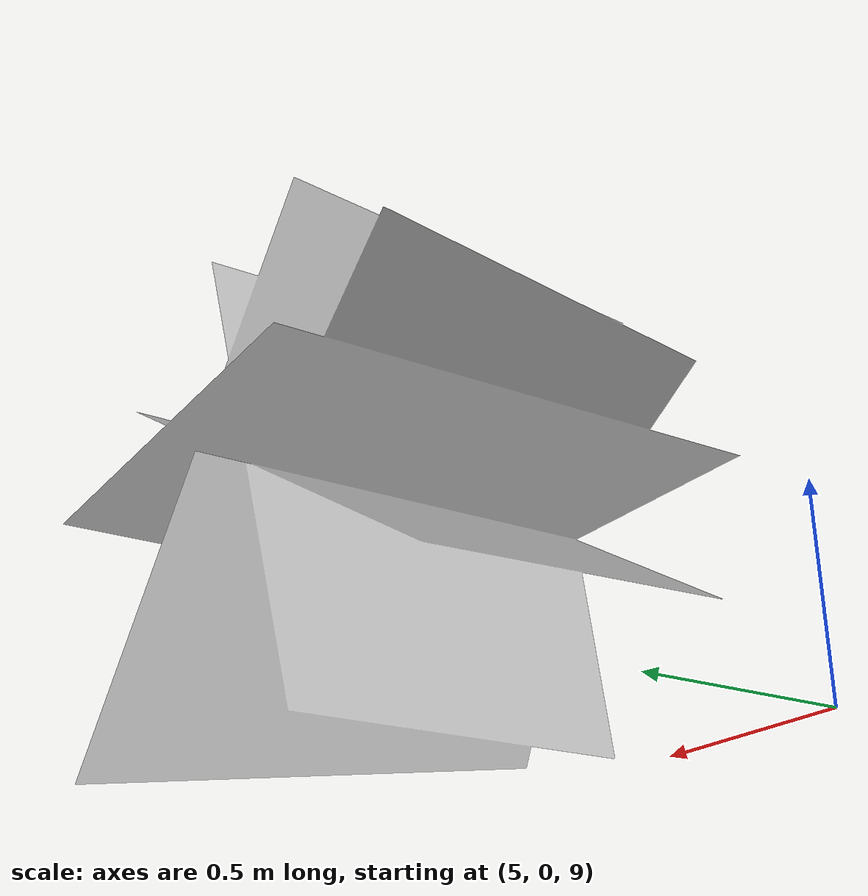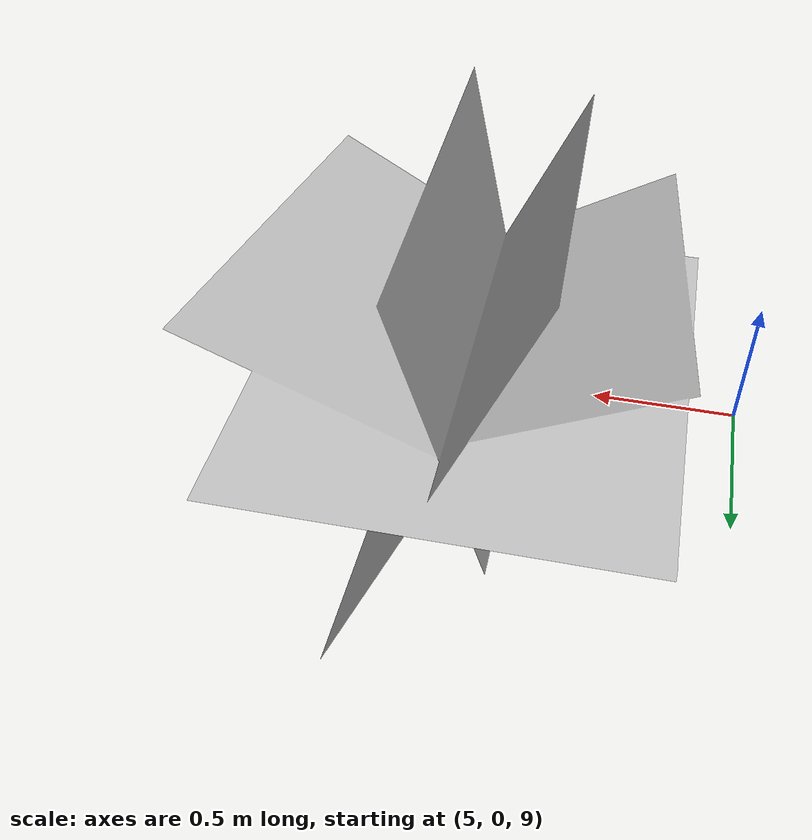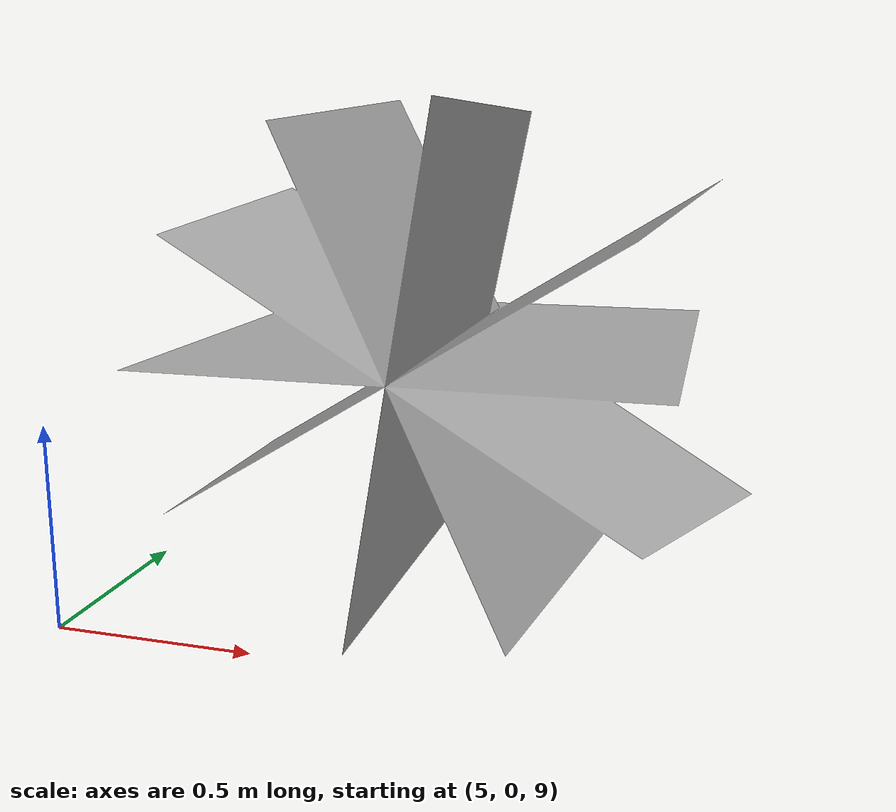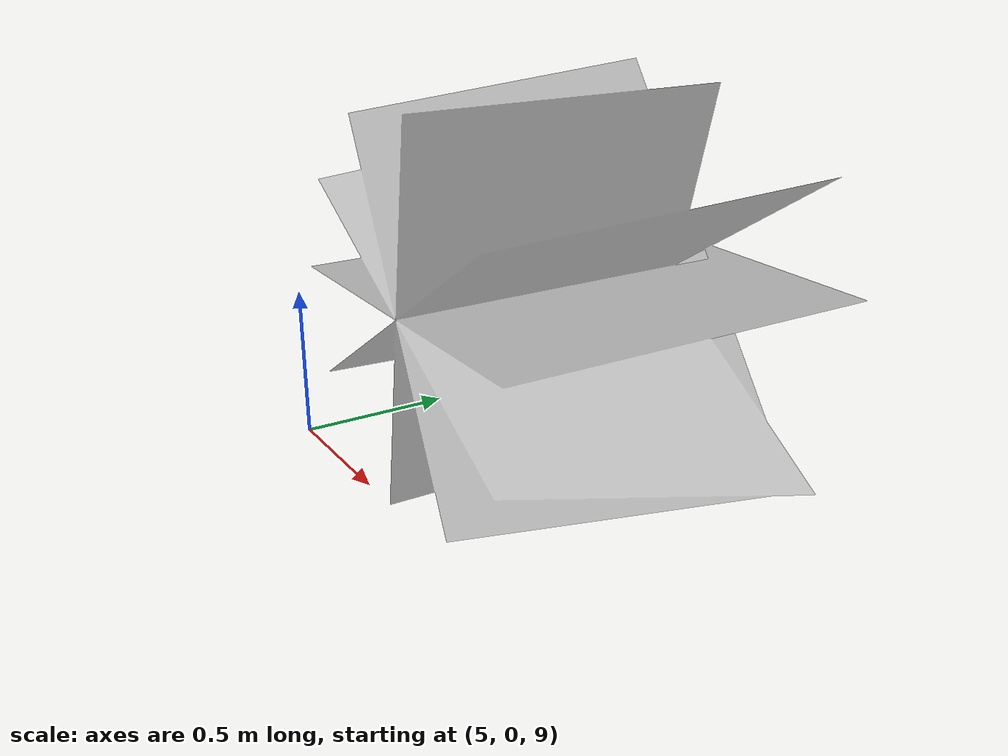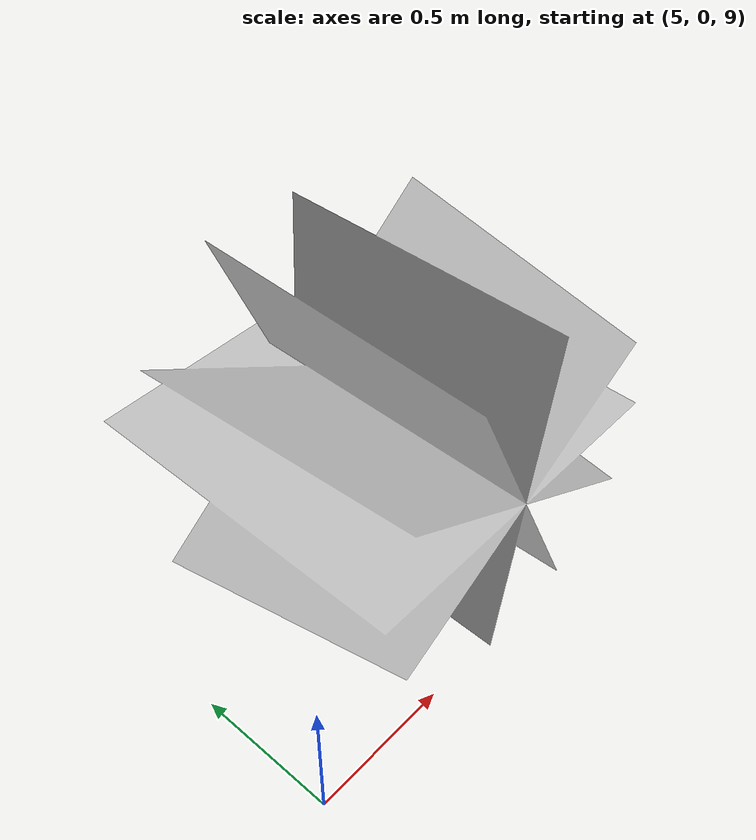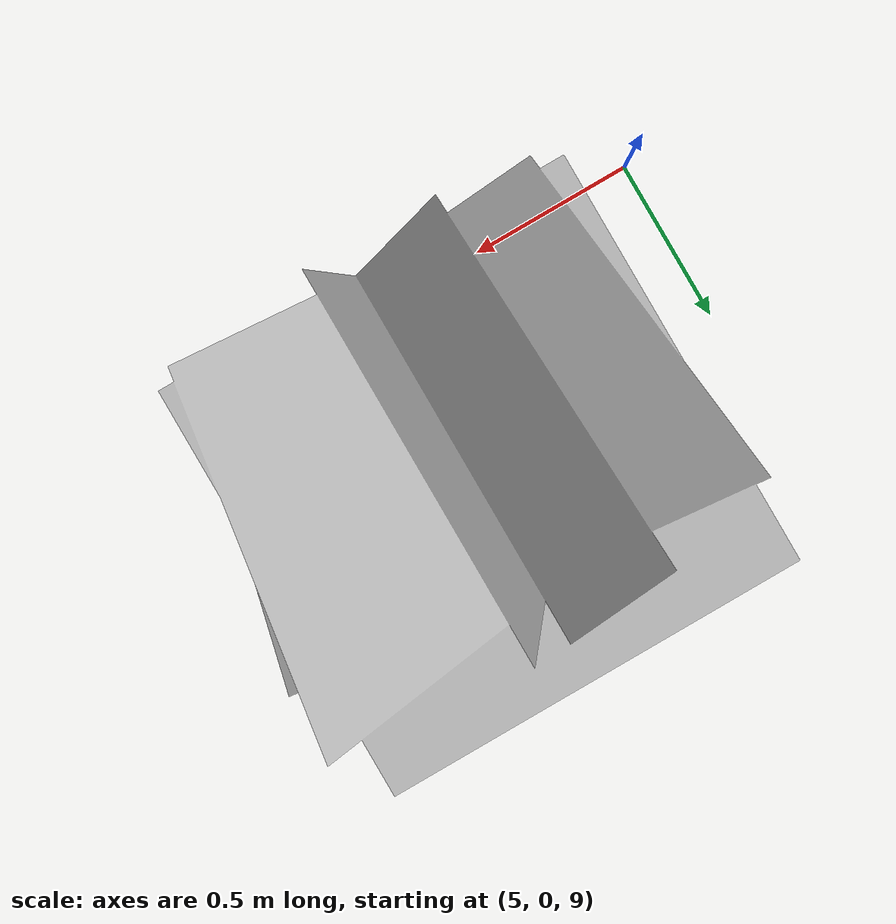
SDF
<?xml version="1.0" ?>
<sdf version="1.9">
  <model name="grass_03">
    <static>true</static>
    <link name="link">
      <collision name="collision">
        <pose>0 0 0.25 0 0 0</pose>
        <geometry>
          <box>
            <size>0.8 0.8 0.5</size>
          </box>
        </geometry>
      </collision>
      <visual name="visual">
        <geometry>
          <mesh>
            <uri>model://grass_03/meshes/Grass-03.obj</uri>
          </mesh>
        </geometry>
      </visual>
    </link>
  </model>
</sdf>
